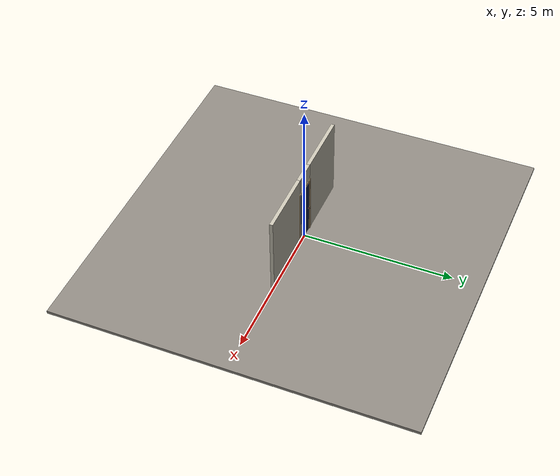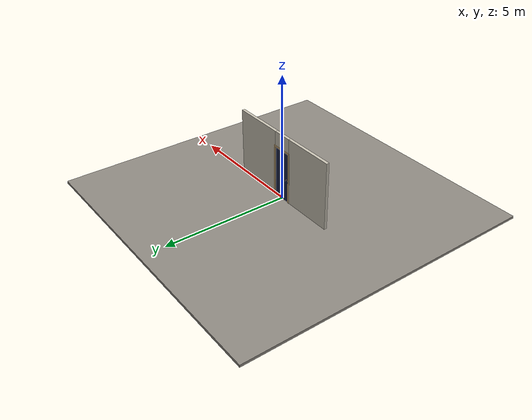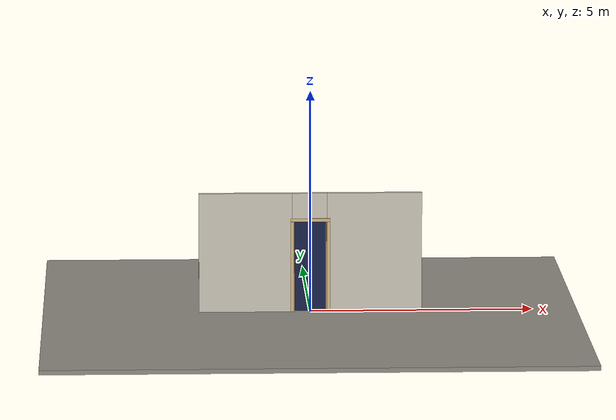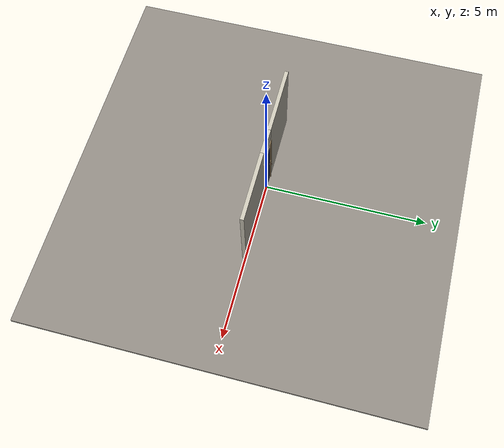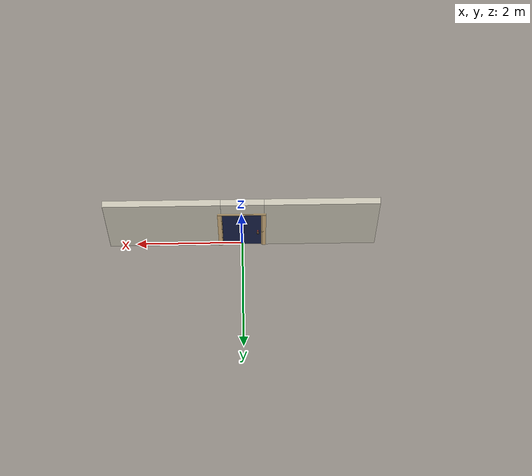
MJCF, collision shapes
<?xml version="1.0" ?>
<mujoco model="db0556_swing_single_full">
  <compiler angle="radian" meshdir="../../hardware" texturedir="../../textures" autolimits="true" inertiafromgeom="false"/>
  <option timestep="0.002" integrator="implicitfast" cone="elliptic" impratio="10" noslip_iterations="3">
    <flag multiccd="enable"/>
  </option>
  <size memory="16M"/>
  <default>
    <geom condim="4" solref="0.005 1" solimp="0.95 0.99 0.001"/>
    <joint solreflimit="0.005 1" solimplimit="0.95 0.99 0.001"/>
    <tendon solreflimit="0.005 1"/>
    <equality solref="0.002 1"/>
  </default>
  <visual>
    <headlight ambient="0.4 0.4 0.4" diffuse="0.7 0.7 0.7" specular="0.2 0.2 0.2"/>
    <quality shadowsize="4096"/>
    <map znear="0.01" zfar="60"/>
  </visual>
  <asset>
    <mesh name="hinge_96510cf394" file="hinge_96510cf394.obj"/>
    <mesh name="hinge_jamb_7fd4ca52b2" file="hinge_jamb_7fd4ca52b2.obj"/>
    <mesh name="knob_0ebdbe0e4b" file="knob_0ebdbe0e4b.obj"/>
    <material name="mat_floor" rgba="0.55 0.53 0.5 1" specular="0.2" shininess="0.15" reflectance="0"/>
    <material name="mat_wall" rgba="0.78 0.76 0.7 1" specular="0.2" shininess="0.1" reflectance="0"/>
    <material name="mat_leaf" rgba="0.09 0.13 0.28 1" specular="0.2" shininess="0.38" reflectance="0"/>
    <material name="mat_leaf_louver" rgba="0.076 0.111 0.238 1" specular="0.2" shininess="0.4" reflectance="0"/>
    <material name="mat_hinge" rgba="0.65 0.66 0.68 1" specular="0.74" shininess="0.5" reflectance="0.36"/>
    <material name="mat_op_bronze" rgba="0.3 0.22 0.15 1" specular="0.74" shininess="0.5" reflectance="0.36"/>
    <material name="mat_trim" rgba="0.85 0.66 0.3 1" specular="0.8" shininess="0.75" reflectance="0.4"/>
    <material name="mat_bolt" rgba="0.85 0.66 0.3 1" specular="0.8" shininess="0.75" reflectance="0.4"/>
    <material name="mat_frame" rgba="0.82 0.7 0.5 1" specular="0.2" shininess="0.45" reflectance="0"/>
    <texture name="skybox" type="skybox" builtin="gradient" rgb1="0.6 0.7 0.85" rgb2="0.9 0.92 0.95" width="256" height="256"/>
  </asset>
  <worldbody>
    <light name="sun" pos="1.5 -2.5 4" dir="-0.3 0.5 -0.8" directional="true" diffuse="0.8 0.8 0.8" specular="0.3 0.3 0.3" castshadow="true"/>
    <light name="fill" pos="-1.5 2.5 3" dir="0.3 -0.5 -0.7" directional="true" diffuse="0.35 0.35 0.4" castshadow="false"/>
    <camera name="robot_view" pos="0 -2.575187 1.734312" xyaxes="1 0 0 0 0.26963 0.962964" fovy="52"/>
    <camera name="far_view" pos="0 2.509187 1.734312" xyaxes="-1 0 0 0 -0.26963 0.962964" fovy="52"/>
    <camera name="iso" pos="-1.932062 -2.168438 2.141063" xyaxes="0.741536 -0.670913 0 0.242917 0.268487 0.932151" fovy="46"/>
    <camera name="detail_handle" pos="-0.115 -0.8695 1.245" xyaxes="0.97561 0.219512 0 -0.070934 0.315262 0.94635" fovy="38"/>
    <geom name="floor" type="box" size="6 6 0.05" pos="0 0 -0.05" material="mat_floor" group="0" contype="1" conaffinity="1" friction="0.8 0.005 0.0001" density="2400"/>
    <geom name="wall_left" type="box" size="1.046 0.0575 1.35" pos="-1.454 -0.033 1.35" material="mat_wall" group="0" contype="1" conaffinity="1" friction="0.6 0.005 0.0001" density="800"/>
    <geom name="wall_right" type="box" size="1.061 0.0575 1.35" pos="1.439 -0.033 1.35" material="mat_wall" group="0" contype="1" conaffinity="1" friction="0.6 0.005 0.0001" density="800"/>
    <geom name="wall_header" type="box" size="0.393 0.0575 0.303" pos="-0.015 -0.033 2.397" material="mat_wall" group="0" contype="1" conaffinity="1" friction="0.6 0.005 0.0001" density="800"/>
    <geom name="hinge_0_jamb" type="mesh" mesh="hinge_jamb_7fd4ca52b2" pos="0.356 0.0245 0.259" quat="0 0 0 1" material="mat_hinge" group="1" contype="0" conaffinity="0" density="7850"/>
    <geom name="hinge_1_jamb" type="mesh" mesh="hinge_jamb_7fd4ca52b2" pos="0.356 0.0245 1.025" quat="0 0 0 1" material="mat_hinge" group="1" contype="0" conaffinity="0" density="7850"/>
    <geom name="hinge_2_jamb" type="mesh" mesh="hinge_jamb_7fd4ca52b2" pos="0.356 0.0245 1.861" quat="0 0 0 1" material="mat_hinge" group="1" contype="0" conaffinity="0" density="7850"/>
    <geom name="jamb_hinge" type="box" size="0.0095 0.0575 1.0225" pos="0.3685 -0.033 1.0225" material="mat_frame" group="0" contype="1" conaffinity="1" friction="0.6 0.005 0.0001" density="400"/>
    <geom name="strike_965_wall_n" type="box" size="0.0245 0.041325 0.0167" pos="-0.3835 -0.049175 0.965" material="mat_frame" group="0" contype="1" conaffinity="1" friction="0.6 0.005 0.0001" density="400"/>
    <geom name="strike_965_wall_p" type="box" size="0.0245 0.008 0.0167" pos="-0.3835 0.01585 0.965" material="mat_frame" group="0" contype="1" conaffinity="1" friction="0.6 0.005 0.0001" density="400"/>
    <geom name="strike_965_ramp" type="box" size="0.0245 0.01649 0.0167" pos="-0.388136 0.028673 0.965" quat="0.977148 0 0 0.212558" material="mat_frame" group="0" contype="1" conaffinity="1" friction="0.12 0.005 0.0001" density="400"/>
    <geom name="strike_965_back" type="box" size="0.01615 0.00785 0.0167" pos="-0.39185 0 0.965" material="mat_frame" group="0" contype="1" conaffinity="1" friction="0.6 0.005 0.0001" density="400"/>
    <geom name="jamb_strike_0" type="box" size="0.0245 0.0575 0.47415" pos="-0.3835 -0.033 0.47415" material="mat_frame" group="0" contype="1" conaffinity="1" friction="0.6 0.005 0.0001" density="400"/>
    <geom name="jamb_strike_1" type="box" size="0.0245 0.0575 0.53165" pos="-0.3835 -0.033 1.51335" material="mat_frame" group="0" contype="1" conaffinity="1" friction="0.6 0.005 0.0001" density="400"/>
    <geom name="jamb_head" type="box" size="0.393 0.0575 0.0095" pos="-0.015 -0.033 2.0545" material="mat_frame" group="0" contype="1" conaffinity="1" friction="0.6 0.005 0.0001" density="400"/>
    <geom name="head_stud" type="box" size="0.393 0.0575 0.015" pos="-0.015 -0.033 2.079" material="mat_wall" group="0" contype="1" conaffinity="1" friction="0.6 0.005 0.0001" density="500"/>
    <geom name="stop_hinge" type="box" size="0.0055 0.016 1.0225" pos="0.3535 -0.034 1.0225" material="mat_frame" group="0" contype="1" conaffinity="1" friction="0.6 0.005 0.0001" density="400"/>
    <geom name="stop_strike" type="box" size="0.0055 0.016 1.0225" pos="-0.3535 -0.034 1.0225" material="mat_frame" group="0" contype="1" conaffinity="1" friction="0.6 0.005 0.0001" density="400"/>
    <geom name="stop_head" type="box" size="0.359 0.016 0.0055" pos="0 -0.034 2.0395" material="mat_frame" group="0" contype="1" conaffinity="1" friction="0.6 0.005 0.0001" density="400"/>
    <geom name="casing_l_n" type="box" size="0.035 0.008 1.032" pos="-0.408 -0.0985 1.0225" material="mat_frame" group="2" contype="0" conaffinity="0" density="400"/>
    <geom name="casing_r_n" type="box" size="0.035 0.008 1.032" pos="0.408 -0.0985 1.0225" material="mat_frame" group="2" contype="0" conaffinity="0" density="400"/>
    <geom name="casing_h_n" type="box" size="0.443 0.008 0.035" pos="0 -0.0985 2.094" material="mat_frame" group="2" contype="0" conaffinity="0" density="400"/>
    <geom name="casing_l_p" type="box" size="0.035 0.008 1.032" pos="-0.408 0.0325 1.0225" material="mat_frame" group="2" contype="0" conaffinity="0" density="400"/>
    <geom name="casing_r_p" type="box" size="0.035 0.008 1.032" pos="0.408 0.0325 1.0225" material="mat_frame" group="2" contype="0" conaffinity="0" density="400"/>
    <geom name="casing_h_p" type="box" size="0.443 0.008 0.035" pos="0 0.0325 2.094" material="mat_frame" group="2" contype="0" conaffinity="0" density="400"/>
    <site name="approach_point" pos="0 -1.5 0" quat="1 0 0 0" size="0.05" rgba="0.2 0.9 0.2 0.5" group="4"/>
    <site name="goal_point" pos="0 1.5 0" quat="1 0 0 0" size="0.05" rgba="0.2 0.9 0.2 0.5" group="4"/>
    <site name="door_plane_center" pos="0 0 1.0225" quat="1 0 0 0" size="0.02" rgba="0.2 0.9 0.2 0.5" group="4"/>
    <body name="leaf" pos="0.359 0 0">
      <inertial pos="-0.354814 0.000157 1.025235" mass="38.009651" quat="0.49976 0.500398 -0.499597 0.500245" diaginertia="1.64019913 13.112245412 14.744467351"/>
      <joint name="leaf_hinge" type="hinge" axis="0 0 -1" pos="-0.003 0.0245 0" limited="true" range="0 2.094395" damping="0.143782" frictionloss="0.975831" armature="0.02"/>
      <geom name="leaf_slab" type="box" size="0.3555 0.0175 1.016" pos="-0.3585 0 1.025" material="mat_leaf" group="0" contype="1" conaffinity="1" friction="0.4 0.005 0.0001" density="1"/>
      <geom name="leaf_louver_0" type="box" size="0.2655 0.002 0.026356" pos="-0.3585 0 0.257621" quat="0.953717 0.300706 0 0" material="mat_leaf_louver" group="1" contype="0" conaffinity="0" density="1"/>
      <geom name="leaf_louver_1" type="box" size="0.2655 0.002 0.026356" pos="-0.3585 0 0.307824" quat="0.953717 0.300706 0 0" material="mat_leaf_louver" group="1" contype="0" conaffinity="0" density="1"/>
      <geom name="leaf_louver_2" type="box" size="0.2655 0.002 0.026356" pos="-0.3585 0 0.358026" quat="0.953717 0.300706 0 0" material="mat_leaf_louver" group="1" contype="0" conaffinity="0" density="1"/>
      <geom name="leaf_louver_3" type="box" size="0.2655 0.002 0.026356" pos="-0.3585 0 0.408228" quat="0.953717 0.300706 0 0" material="mat_leaf_louver" group="1" contype="0" conaffinity="0" density="1"/>
      <geom name="leaf_louver_4" type="box" size="0.2655 0.002 0.026356" pos="-0.3585 0 0.458431" quat="0.953717 0.300706 0 0" material="mat_leaf_louver" group="1" contype="0" conaffinity="0" density="1"/>
      <geom name="leaf_louver_5" type="box" size="0.2655 0.002 0.026356" pos="-0.3585 0 0.508633" quat="0.953717 0.300706 0 0" material="mat_leaf_louver" group="1" contype="0" conaffinity="0" density="1"/>
      <geom name="leaf_louver_6" type="box" size="0.2655 0.002 0.026356" pos="-0.3585 0 0.558835" quat="0.953717 0.300706 0 0" material="mat_leaf_louver" group="1" contype="0" conaffinity="0" density="1"/>
      <geom name="leaf_louver_7" type="box" size="0.2655 0.002 0.026356" pos="-0.3585 0 0.609038" quat="0.953717 0.300706 0 0" material="mat_leaf_louver" group="1" contype="0" conaffinity="0" density="1"/>
      <geom name="leaf_louver_8" type="box" size="0.2655 0.002 0.026356" pos="-0.3585 0 0.65924" quat="0.953717 0.300706 0 0" material="mat_leaf_louver" group="1" contype="0" conaffinity="0" density="1"/>
      <geom name="leaf_louver_9" type="box" size="0.2655 0.002 0.026356" pos="-0.3585 0 0.709442" quat="0.953717 0.300706 0 0" material="mat_leaf_louver" group="1" contype="0" conaffinity="0" density="1"/>
      <geom name="leaf_louver_10" type="box" size="0.2655 0.002 0.026356" pos="-0.3585 0 0.759645" quat="0.953717 0.300706 0 0" material="mat_leaf_louver" group="1" contype="0" conaffinity="0" density="1"/>
      <geom name="leaf_louver_11" type="box" size="0.2655 0.002 0.026356" pos="-0.3585 0 0.809847" quat="0.953717 0.300706 0 0" material="mat_leaf_louver" group="1" contype="0" conaffinity="0" density="1"/>
      <geom name="leaf_louver_12" type="box" size="0.2655 0.002 0.026356" pos="-0.3585 0 0.860049" quat="0.953717 0.300706 0 0" material="mat_leaf_louver" group="1" contype="0" conaffinity="0" density="1"/>
      <geom name="leaf_louver_13" type="box" size="0.2655 0.002 0.026356" pos="-0.3585 0 0.910252" quat="0.953717 0.300706 0 0" material="mat_leaf_louver" group="1" contype="0" conaffinity="0" density="1"/>
      <geom name="leaf_louver_14" type="box" size="0.2655 0.002 0.026356" pos="-0.3585 0 0.960454" quat="0.953717 0.300706 0 0" material="mat_leaf_louver" group="1" contype="0" conaffinity="0" density="1"/>
      <geom name="leaf_louver_15" type="box" size="0.2655 0.002 0.026356" pos="-0.3585 0 1.010656" quat="0.953717 0.300706 0 0" material="mat_leaf_louver" group="1" contype="0" conaffinity="0" density="1"/>
      <geom name="leaf_louver_16" type="box" size="0.2655 0.002 0.026356" pos="-0.3585 0 1.060859" quat="0.953717 0.300706 0 0" material="mat_leaf_louver" group="1" contype="0" conaffinity="0" density="1"/>
      <geom name="leaf_louver_17" type="box" size="0.2655 0.002 0.026356" pos="-0.3585 0 1.111061" quat="0.953717 0.300706 0 0" material="mat_leaf_louver" group="1" contype="0" conaffinity="0" density="1"/>
      <geom name="leaf_louver_18" type="box" size="0.2655 0.002 0.026356" pos="-0.3585 0 1.161264" quat="0.953717 0.300706 0 0" material="mat_leaf_louver" group="1" contype="0" conaffinity="0" density="1"/>
      <geom name="leaf_louver_19" type="box" size="0.2655 0.002 0.026356" pos="-0.3585 0 1.211466" quat="0.953717 0.300706 0 0" material="mat_leaf_louver" group="1" contype="0" conaffinity="0" density="1"/>
      <geom name="leaf_louver_20" type="box" size="0.2655 0.002 0.026356" pos="-0.3585 0 1.261668" quat="0.953717 0.300706 0 0" material="mat_leaf_louver" group="1" contype="0" conaffinity="0" density="1"/>
      <geom name="leaf_louver_21" type="box" size="0.2655 0.002 0.026356" pos="-0.3585 0 1.311871" quat="0.953717 0.300706 0 0" material="mat_leaf_louver" group="1" contype="0" conaffinity="0" density="1"/>
      <geom name="leaf_louver_22" type="box" size="0.2655 0.002 0.026356" pos="-0.3585 0 1.362073" quat="0.953717 0.300706 0 0" material="mat_leaf_louver" group="1" contype="0" conaffinity="0" density="1"/>
      <geom name="leaf_louver_23" type="box" size="0.2655 0.002 0.026356" pos="-0.3585 0 1.412275" quat="0.953717 0.300706 0 0" material="mat_leaf_louver" group="1" contype="0" conaffinity="0" density="1"/>
      <geom name="leaf_louver_24" type="box" size="0.2655 0.002 0.026356" pos="-0.3585 0 1.462478" quat="0.953717 0.300706 0 0" material="mat_leaf_louver" group="1" contype="0" conaffinity="0" density="1"/>
      <geom name="leaf_louver_25" type="box" size="0.2655 0.002 0.026356" pos="-0.3585 0 1.51268" quat="0.953717 0.300706 0 0" material="mat_leaf_louver" group="1" contype="0" conaffinity="0" density="1"/>
      <geom name="leaf_louver_26" type="box" size="0.2655 0.002 0.026356" pos="-0.3585 0 1.562882" quat="0.953717 0.300706 0 0" material="mat_leaf_louver" group="1" contype="0" conaffinity="0" density="1"/>
      <geom name="leaf_louver_27" type="box" size="0.2655 0.002 0.026356" pos="-0.3585 0 1.613085" quat="0.953717 0.300706 0 0" material="mat_leaf_louver" group="1" contype="0" conaffinity="0" density="1"/>
      <geom name="leaf_louver_28" type="box" size="0.2655 0.002 0.026356" pos="-0.3585 0 1.663287" quat="0.953717 0.300706 0 0" material="mat_leaf_louver" group="1" contype="0" conaffinity="0" density="1"/>
      <geom name="leaf_louver_29" type="box" size="0.2655 0.002 0.026356" pos="-0.3585 0 1.713489" quat="0.953717 0.300706 0 0" material="mat_leaf_louver" group="1" contype="0" conaffinity="0" density="1"/>
      <geom name="leaf_louver_30" type="box" size="0.2655 0.002 0.026356" pos="-0.3585 0 1.763692" quat="0.953717 0.300706 0 0" material="mat_leaf_louver" group="1" contype="0" conaffinity="0" density="1"/>
      <geom name="leaf_louver_31" type="box" size="0.2655 0.002 0.026356" pos="-0.3585 0 1.813894" quat="0.953717 0.300706 0 0" material="mat_leaf_louver" group="1" contype="0" conaffinity="0" density="1"/>
      <geom name="leaf_louver_32" type="box" size="0.2655 0.002 0.026356" pos="-0.3585 0 1.864096" quat="0.953717 0.300706 0 0" material="mat_leaf_louver" group="1" contype="0" conaffinity="0" density="1"/>
      <geom name="leaf_louver_33" type="box" size="0.2655 0.002 0.026356" pos="-0.3585 0 1.914299" quat="0.953717 0.300706 0 0" material="mat_leaf_louver" group="1" contype="0" conaffinity="0" density="1"/>
      <geom name="hinge_0" type="mesh" mesh="hinge_96510cf394" pos="-0.003 0.0245 0.259" quat="0 0 0 1" material="mat_hinge" group="1" contype="0" conaffinity="0" density="7850"/>
      <geom name="hinge_1" type="mesh" mesh="hinge_96510cf394" pos="-0.003 0.0245 1.025" quat="0 0 0 1" material="mat_hinge" group="1" contype="0" conaffinity="0" density="7850"/>
      <geom name="hinge_2" type="mesh" mesh="hinge_96510cf394" pos="-0.003 0.0245 1.861" quat="0 0 0 1" material="mat_hinge" group="1" contype="0" conaffinity="0" density="7850"/>
      <geom name="leaf_latch_bolt_faceplate" type="box" size="0.0006 0.01235 0.0267" pos="-0.7134 0 0.965" material="mat_bolt" group="1" contype="0" conaffinity="0" density="8500"/>
      <site name="leaf_edge_mid" pos="-0.714 0 1.016" quat="1 0 0 0" size="0.02" rgba="0.2 0.9 0.2 0.5" group="4"/>
      <body name="leaf_handle" pos="-0.654 0 0.965">
        <inertial pos="0 0 0" mass="1.21367" quat="0.5 0.5 0.5 0.5" diaginertia="0.000321148 0.004835982 0.004835982"/>
        <joint name="leaf_handle_hinge" type="hinge" axis="0 1 0" limited="true" range="0 0.87" damping="0.143674" frictionloss="0.039" stiffness="0.5" springref="-0.5" armature="0.01"/>
        <geom name="leaf_handle_spindle" type="cylinder" size="0.006 0.0255" pos="0 0 0" quat="0.707107 -0.707107 0 0" material="mat_op_bronze" group="1" contype="0" conaffinity="0" density="7850"/>
        <geom name="leaf_handle_knob_n" type="mesh" mesh="knob_0ebdbe0e4b" pos="0 -0.0175 0" quat="0 0 -0.707107 0.707107" material="mat_op_bronze" group="1" contype="0" conaffinity="0" density="3000"/>
        <geom name="leaf_handle_knob_col_n" type="sphere" size="0.0252" pos="0 -0.0695 0" material="mat_op_bronze" group="0" contype="1" conaffinity="1" friction="0.9 0.01 0.0001" density="3000"/>
        <geom name="leaf_handle_knob_neck_n" type="cylinder" size="0.011 0.012" pos="0 -0.0295 0" quat="0.707107 -0.707107 0 0" material="mat_op_bronze" group="3" contype="1" conaffinity="1" rgba="0.8 0.3 0.3 0.25" friction="0.6 0.005 0.0001" density="3000"/>
        <geom name="leaf_handle_knob_p" type="mesh" mesh="knob_0ebdbe0e4b" pos="0 0.0175 0" quat="0 0 0.707107 0.707107" material="mat_op_bronze" group="1" contype="0" conaffinity="0" density="3000"/>
        <geom name="leaf_handle_knob_col_p" type="sphere" size="0.0252" pos="0 0.0695 0" material="mat_op_bronze" group="0" contype="1" conaffinity="1" friction="0.9 0.01 0.0001" density="3000"/>
        <geom name="leaf_handle_knob_neck_p" type="cylinder" size="0.011 0.012" pos="0 0.0295 0" quat="0.707107 -0.707107 0 0" material="mat_op_bronze" group="3" contype="1" conaffinity="1" rgba="0.8 0.3 0.3 0.25" friction="0.6 0.005 0.0001" density="3000"/>
        <site name="leaf_handle_grip_n" pos="0 -0.0695 0" quat="1 0 0 0" size="0.012" rgba="0.2 0.9 0.2 0.5" group="4"/>
        <site name="leaf_handle_grip_p" pos="0 0.0695 0" quat="1 0 0 0" size="0.012" rgba="0.2 0.9 0.2 0.5" group="4"/>
      </body>
      <body name="leaf_latch_bolt" pos="-0.714 0 0.965">
        <inertial pos="0.00865 0 0" mass="0.041419" quat="0.92388 0.382683 0 0" diaginertia="0.000000798 0.000005598 0.000005598"/>
        <joint name="leaf_latch_bolt_slide" type="slide" axis="1 0 0" limited="true" range="0 0.0127" damping="2" frictionloss="0.3" stiffness="300" springref="-0.008333" armature="0.1"/>
        <geom name="leaf_latch_bolt_capsule" type="capsule" size="0.00635 0.015" pos="0.00865 0 0" quat="0.707107 0 -0.707107 0" material="mat_bolt" group="0" contype="1" conaffinity="1" friction="0.2 0.005 0.0001" density="8500"/>
      </body>
    </body>
  </worldbody>
  <tendon>
    <fixed name="leaf_latch_bolt_coupling" limited="true" range="0 10">
      <joint joint="leaf_latch_bolt_slide" coef="1"/>
      <joint joint="leaf_handle_hinge" coef="-0.015679"/>
    </fixed>
  </tendon>
  <sensor>
    <jointpos name="leaf_hinge_pos" joint="leaf_hinge"/>
    <jointvel name="leaf_hinge_vel" joint="leaf_hinge"/>
    <jointpos name="leaf_handle_hinge_pos" joint="leaf_handle_hinge"/>
    <jointvel name="leaf_handle_hinge_vel" joint="leaf_handle_hinge"/>
    <jointpos name="leaf_latch_bolt_slide_pos" joint="leaf_latch_bolt_slide"/>
    <jointvel name="leaf_latch_bolt_slide_vel" joint="leaf_latch_bolt_slide"/>
  </sensor>
</mujoco>
